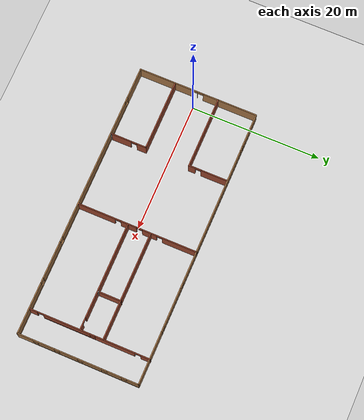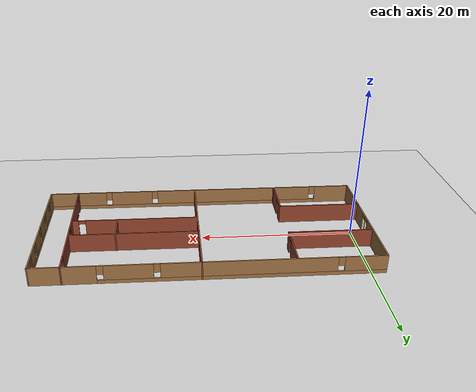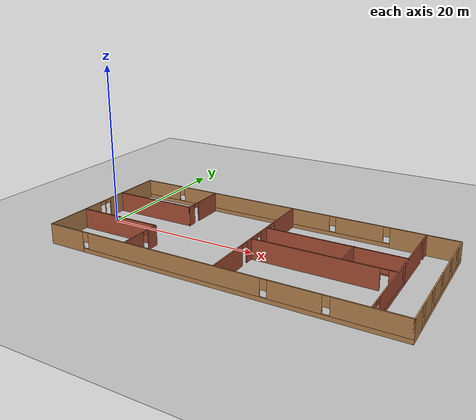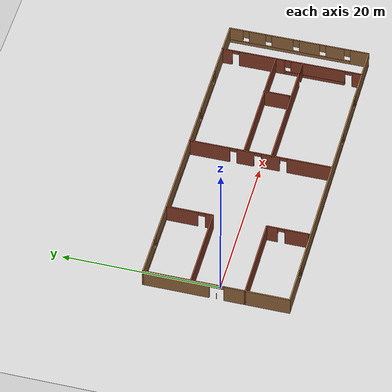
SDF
<sdf version="1.7">
 <world name="default">
  <model name="ground_plane">
   <static>1</static>
   <link name="link">
    <collision name="collision">
     <geometry><plane><normal>0 0 1</normal><size>100 100</size></plane></geometry>
     <surface>
      <contact><collide_bitmask>65535</collide_bitmask></contact>
      <friction><ode><mu>100</mu><mu2>50</mu2></ode></friction>
     </surface>
    </collision>
    <visual name="visual">
     <cast_shadows>0</cast_shadows>
     <geometry><plane><normal>0 0 1</normal><size>100 100</size></plane></geometry>
     <material>
      <script><uri>file://media/materials/scripts/gazebo.material</uri><name>Gazebo/Grey</name></script>
     </material>
    </visual>
   </link>
  </model>
  <model name="bighouse">
   <pose>19.6392 0.100979 0 0 -0 0</pose>
   <link name="Wall_16">
    <collision name="Wall_16_Collision">
     <geometry><box><size>11 0.15 2.5</size></box></geometry>
     <pose>0 0 1.25 0 -0 0</pose>
    </collision>
    <visual name="Wall_16_Visual">
     <pose>0 0 1.25 0 -0 0</pose>
     <geometry><box><size>11 0.15 2.5</size></box></geometry>
     <material>
      <script><uri>file://media/materials/scripts/gazebo.material</uri><name>Gazebo/Bricks</name></script>
      <ambient>1 1 1 1</ambient>
     </material>
     <meta><layer>0</layer></meta>
    </visual>
    <pose>-15.9308 3.16083 0 0 -0 0</pose>
   </link>
   <link name="Wall_19">
    <pose>-10.5058 6.08583 0 0 -0 1.5708</pose>
    <visual name="Wall_19_Visual_0">
     <pose>-2.46102 0 1.25 0 -0 0</pose>
     <geometry><box><size>1.07796 0.15 2.5</size></box></geometry>
     <material>
      <script><uri>file://media/materials/scripts/gazebo.material</uri><name>Gazebo/Bricks</name></script>
      <ambient>1 1 1 1</ambient>
     </material>
     <meta><layer>0</layer></meta>
    </visual>
    <collision name="Wall_19_Collision_0">
     <geometry><box><size>1.07796 0.15 2.5</size></box></geometry>
     <pose>-2.46102 0 1.25 0 -0 0</pose>
    </collision>
    <visual name="Wall_19_Visual_1">
     <pose>0.988979 0 1.25 0 -0 0</pose>
     <geometry><box><size>4.02204 0.15 2.5</size></box></geometry>
     <material>
      <script><uri>file://media/materials/scripts/gazebo.material</uri><name>Gazebo/Bricks</name></script>
      <ambient>1 1 1 1</ambient>
     </material>
     <meta><layer>0</layer></meta>
    </visual>
    <collision name="Wall_19_Collision_1">
     <geometry><box><size>4.02204 0.15 2.5</size></box></geometry>
     <pose>0.988979 0 1.25 0 -0 0</pose>
    </collision>
    <visual name="Wall_19_Visual_2">
     <pose>-1.47204 0 2.25 0 -0 0</pose>
     <geometry><box><size>0.9 0.15 0.5</size></box></geometry>
     <material>
      <script><uri>file://media/materials/scripts/gazebo.material</uri><name>Gazebo/Bricks</name></script>
      <ambient>1 1 1 1</ambient>
     </material>
     <meta><layer>0</layer></meta>
    </visual>
    <collision name="Wall_19_Collision_2">
     <geometry><box><size>0.9 0.15 0.5</size></box></geometry>
     <pose>-1.47204 0 2.25 0 -0 0</pose>
    </collision>
   </link>
   <link name="Wall_21">
    <collision name="Wall_21_Collision">
     <geometry><box><size>11 0.15 2.5</size></box></geometry>
     <pose>0 0 1.25 0 -0 0</pose>
    </collision>
    <visual name="Wall_21_Visual">
     <pose>0 0 1.25 0 -0 0</pose>
     <geometry><box><size>11 0.15 2.5</size></box></geometry>
     <material>
      <script><uri>file://media/materials/scripts/gazebo.material</uri><name>Gazebo/Bricks</name></script>
      <ambient>1 1 1 1</ambient>
     </material>
     <meta><layer>0</layer></meta>
    </visual>
    <pose>-16.0035 -3.64568 0 0 -0 0</pose>
   </link>
   <link name="Wall_22">
    <pose>-10.5785 -6.32069 0 0 -0 -1.5708</pose>
    <visual name="Wall_22_Visual_0">
     <pose>-2.0015 0 1.25 0 -0 0</pose>
     <geometry><box><size>1.49701 0.15 2.5</size></box></geometry>
     <material>
      <script><uri>file://media/materials/scripts/gazebo.material</uri><name>Gazebo/Bricks</name></script>
      <ambient>1 1 1 1</ambient>
     </material>
     <meta><layer>0</layer></meta>
    </visual>
    <collision name="Wall_22_Collision_0">
     <geometry><box><size>1.49701 0.15 2.5</size></box></geometry>
     <pose>-2.0015 0 1.25 0 -0 0</pose>
    </collision>
    <visual name="Wall_22_Visual_1">
     <pose>1.1985 0 1.25 0 -0 0</pose>
     <geometry><box><size>3.10299 0.15 2.5</size></box></geometry>
     <material>
      <script><uri>file://media/materials/scripts/gazebo.material</uri><name>Gazebo/Bricks</name></script>
      <ambient>1 1 1 1</ambient>
     </material>
     <meta><layer>0</layer></meta>
    </visual>
    <collision name="Wall_22_Collision_1">
     <geometry><box><size>3.10299 0.15 2.5</size></box></geometry>
     <pose>1.1985 0 1.25 0 -0 0</pose>
    </collision>
    <visual name="Wall_22_Visual_2">
     <pose>-0.802991 0 2.25 0 -0 0</pose>
     <geometry><box><size>0.9 0.15 0.5</size></box></geometry>
     <material>
      <script><uri>file://media/materials/scripts/gazebo.material</uri><name>Gazebo/Bricks</name></script>
      <ambient>1 1 1 1</ambient>
     </material>
     <meta><layer>0</layer></meta>
    </visual>
    <collision name="Wall_22_Collision_2">
     <geometry><box><size>0.9 0.15 0.5</size></box></geometry>
     <pose>-0.802991 0 2.25 0 -0 0</pose>
    </collision>
   </link>
   <link name="Wall_24">
    <collision name="Wall_24_Collision">
     <geometry><box><size>0.25 0.15 2.5</size></box></geometry>
     <pose>0 0 1.25 0 -0 0</pose>
    </collision>
    <visual name="Wall_24_Visual">
     <pose>0 0 1.25 0 -0 0</pose>
     <geometry><box><size>0.25 0.15 2.5</size></box></geometry>
     <material>
      <script><uri>file://media/materials/scripts/gazebo.material</uri><name>Gazebo/Grey</name></script>
      <ambient>1 1 1 1</ambient>
     </material>
     <meta><layer>0</layer></meta>
    </visual>
    <pose>-10.5655 -9.04398 0 0 -0 -1.309</pose>
   </link>
   <link name="Wall_28">
    <pose>0.951607 -0.015395 0 0 -0 -1.5708</pose>
    <visual name="Wall_28_Visual_0">
     <pose>-6.59547 0 1.25 0 -0 0</pose>
     <geometry><box><size>5.30905 0.15 2.5</size></box></geometry>
     <material>
      <script><uri>file://media/materials/scripts/gazebo.material</uri><name>Gazebo/Bricks</name></script>
      <ambient>1 1 1 1</ambient>
     </material>
     <meta><layer>0</layer></meta>
    </visual>
    <collision name="Wall_28_Collision_0">
     <geometry><box><size>5.30905 0.15 2.5</size></box></geometry>
     <pose>-6.59547 0 1.25 0 -0 0</pose>
    </collision>
    <visual name="Wall_28_Visual_1">
     <pose>-1.93341 0 1.25 0 -0 0</pose>
     <geometry><box><size>2.21508 0.15 2.5</size></box></geometry>
     <material>
      <script><uri>file://media/materials/scripts/gazebo.material</uri><name>Gazebo/Bricks</name></script>
      <ambient>1 1 1 1</ambient>
     </material>
     <meta><layer>0</layer></meta>
    </visual>
    <collision name="Wall_28_Collision_1">
     <geometry><box><size>2.21508 0.15 2.5</size></box></geometry>
     <pose>-1.93341 0 1.25 0 -0 0</pose>
    </collision>
    <visual name="Wall_28_Visual_2">
     <pose>1.28281 0 1.25 0 -0 0</pose>
     <geometry><box><size>2.41736 0.15 2.5</size></box></geometry>
     <material>
      <script><uri>file://media/materials/scripts/gazebo.material</uri><name>Gazebo/Bricks</name></script>
      <ambient>1 1 1 1</ambient>
     </material>
     <meta><layer>0</layer></meta>
    </visual>
    <collision name="Wall_28_Collision_2">
     <geometry><box><size>2.41736 0.15 2.5</size></box></geometry>
     <pose>1.28281 0 1.25 0 -0 0</pose>
    </collision>
    <visual name="Wall_28_Visual_3">
     <pose>6.32075 0 1.25 0 -0 0</pose>
     <geometry><box><size>5.85851 0.15 2.5</size></box></geometry>
     <material>
      <script><uri>file://media/materials/scripts/gazebo.material</uri><name>Gazebo/Bricks</name></script>
      <ambient>1 1 1 1</ambient>
     </material>
     <meta><layer>0</layer></meta>
    </visual>
    <collision name="Wall_28_Collision_3">
     <geometry><box><size>5.85851 0.15 2.5</size></box></geometry>
     <pose>6.32075 0 1.25 0 -0 0</pose>
    </collision>
    <visual name="Wall_28_Visual_4">
     <pose>-3.49095 0 2.25 0 -0 0</pose>
     <geometry><box><size>0.9 0.15 0.5</size></box></geometry>
     <material>
      <script><uri>file://media/materials/scripts/gazebo.material</uri><name>Gazebo/Bricks</name></script>
      <ambient>1 1 1 1</ambient>
     </material>
     <meta><layer>0</layer></meta>
    </visual>
    <collision name="Wall_28_Collision_4">
     <geometry><box><size>0.9 0.15 0.5</size></box></geometry>
     <pose>-3.49095 0 2.25 0 -0 0</pose>
    </collision>
    <visual name="Wall_28_Visual_5">
     <pose>-0.375866 0 2.25 0 -0 0</pose>
     <geometry><box><size>0.9 0.15 0.5</size></box></geometry>
     <material>
      <script><uri>file://media/materials/scripts/gazebo.material</uri><name>Gazebo/Bricks</name></script>
      <ambient>1 1 1 1</ambient>
     </material>
     <meta><layer>0</layer></meta>
    </visual>
    <collision name="Wall_28_Collision_5">
     <geometry><box><size>0.9 0.15 0.5</size></box></geometry>
     <pose>-0.375866 0 2.25 0 -0 0</pose>
    </collision>
    <visual name="Wall_28_Visual_6">
     <pose>2.94149 0 2.25 0 -0 0</pose>
     <geometry><box><size>0.9 0.15 0.5</size></box></geometry>
     <material>
      <script><uri>file://media/materials/scripts/gazebo.material</uri><name>Gazebo/Bricks</name></script>
      <ambient>1 1 1 1</ambient>
     </material>
     <meta><layer>0</layer></meta>
    </visual>
    <collision name="Wall_28_Collision_6">
     <geometry><box><size>0.9 0.15 0.5</size></box></geometry>
     <pose>2.94149 0 2.25 0 -0 0</pose>
    </collision>
   </link>
   <link name="Wall_30">
    <pose>17.5788 0.025061 0 0 -0 -1.5708</pose>
    <visual name="Wall_30_Visual_0">
     <pose>-8.51711 0 1.25 0 -0 0</pose>
     <geometry><box><size>1.46578 0.15 2.5</size></box></geometry>
     <material>
      <script><uri>file://media/materials/scripts/gazebo.material</uri><name>Gazebo/Bricks</name></script>
      <ambient>1 1 1 1</ambient>
     </material>
     <meta><layer>0</layer></meta>
    </visual>
    <collision name="Wall_30_Collision_0">
     <geometry><box><size>1.46578 0.15 2.5</size></box></geometry>
     <pose>-8.51711 0 1.25 0 -0 0</pose>
    </collision>
    <visual name="Wall_30_Visual_1">
     <pose>-3.8705 0 1.25 0 -0 0</pose>
     <geometry><box><size>6.02745 0.15 2.5</size></box></geometry>
     <material>
      <script><uri>file://media/materials/scripts/gazebo.material</uri><name>Gazebo/Bricks</name></script>
      <ambient>1 1 1 1</ambient>
     </material>
     <meta><layer>0</layer></meta>
    </visual>
    <collision name="Wall_30_Collision_1">
     <geometry><box><size>6.02745 0.15 2.5</size></box></geometry>
     <pose>-3.8705 0 1.25 0 -0 0</pose>
    </collision>
    <visual name="Wall_30_Visual_2">
     <pose>8.60649 0 1.25 0 -0 0</pose>
     <geometry><box><size>1.28703 0.15 2.5</size></box></geometry>
     <material>
      <script><uri>file://media/materials/scripts/gazebo.material</uri><name>Gazebo/Bricks</name></script>
      <ambient>1 1 1 1</ambient>
     </material>
     <meta><layer>0</layer></meta>
    </visual>
    <collision name="Wall_30_Collision_2">
     <geometry><box><size>1.28703 0.15 2.5</size></box></geometry>
     <pose>8.60649 0 1.25 0 -0 0</pose>
    </collision>
    <visual name="Wall_30_Visual_3">
     <pose>3.1031 0 0.25 0 -0 0</pose>
     <geometry><box><size>7.91975 0.15 0.5</size></box></geometry>
     <material>
      <script><uri>file://media/materials/scripts/gazebo.material</uri><name>Gazebo/Bricks</name></script>
      <ambient>1 1 1 1</ambient>
     </material>
     <meta><layer>0</layer></meta>
    </visual>
    <collision name="Wall_30_Collision_3">
     <geometry><box><size>7.91975 0.15 0.5</size></box></geometry>
     <pose>3.1031 0 0.25 0 -0 0</pose>
    </collision>
    <visual name="Wall_30_Visual_4">
     <pose>3.5031 0 1.5 0 -0 0</pose>
     <geometry><box><size>7.11975 0.15 2</size></box></geometry>
     <material>
      <script><uri>file://media/materials/scripts/gazebo.material</uri><name>Gazebo/Bricks</name></script>
      <ambient>1 1 1 1</ambient>
     </material>
     <meta><layer>0</layer></meta>
    </visual>
    <collision name="Wall_30_Collision_4">
     <geometry><box><size>7.11975 0.15 2</size></box></geometry>
     <pose>3.5031 0 1.5 0 -0 0</pose>
    </collision>
    <visual name="Wall_30_Visual_5">
     <pose>-0.456777 0 1.9 0 -0 0</pose>
     <geometry><box><size>0.8 0.15 1.2</size></box></geometry>
     <material>
      <script><uri>file://media/materials/scripts/gazebo.material</uri><name>Gazebo/Bricks</name></script>
      <ambient>1 1 1 1</ambient>
     </material>
     <meta><layer>0</layer></meta>
    </visual>
    <collision name="Wall_30_Collision_5">
     <geometry><box><size>0.8 0.15 1.2</size></box></geometry>
     <pose>-0.456777 0 1.9 0 -0 0</pose>
    </collision>
    <visual name="Wall_30_Visual_6">
     <pose>-7.33422 0 2.25 0 -0 0</pose>
     <geometry><box><size>0.9 0.15 0.5</size></box></geometry>
     <material>
      <script><uri>file://media/materials/scripts/gazebo.material</uri><name>Gazebo/Bricks</name></script>
      <ambient>1 1 1 1</ambient>
     </material>
     <meta><layer>0</layer></meta>
    </visual>
    <collision name="Wall_30_Collision_6">
     <geometry><box><size>0.9 0.15 0.5</size></box></geometry>
     <pose>-7.33422 0 2.25 0 -0 0</pose>
    </collision>
    <visual name="Wall_30_Visual_7">
     <pose>7.51297 0 2.25 0 -0 0</pose>
     <geometry><box><size>0.9 0.15 0.5</size></box></geometry>
     <material>
      <script><uri>file://media/materials/scripts/gazebo.material</uri><name>Gazebo/Bricks</name></script>
      <ambient>1 1 1 1</ambient>
     </material>
     <meta><layer>0</layer></meta>
    </visual>
    <collision name="Wall_30_Collision_7">
     <geometry><box><size>0.9 0.15 0.5</size></box></geometry>
     <pose>7.51297 0 2.25 0 -0 0</pose>
    </collision>
   </link>
   <link name="Wall_34">
    <collision name="Wall_34_Collision">
     <geometry><box><size>16.75 0.15 2.5</size></box></geometry>
     <pose>0 0 1.25 0 -0 0</pose>
    </collision>
    <visual name="Wall_34_Visual">
     <pose>0 0 1.25 0 -0 0</pose>
     <geometry><box><size>16.75 0.15 2.5</size></box></geometry>
     <material>
      <script><uri>file://media/materials/scripts/gazebo.material</uri><name>Gazebo/Bricks</name></script>
      <ambient>1 1 1 1</ambient>
     </material>
     <meta><layer>0</layer></meta>
    </visual>
    <pose>9.25161 2.12033 0 0 -0 0</pose>
   </link>
   <link name="Wall_36">
    <pose>9.25161 -1.3993 0 0 -0 0</pose>
    <visual name="Wall_36_Visual_0">
     <pose>-0.938142 0 1.25 0 -0 0</pose>
     <geometry><box><size>14.8737 0.15 2.5</size></box></geometry>
     <material>
      <script><uri>file://media/materials/scripts/gazebo.material</uri><name>Gazebo/Bricks</name></script>
      <ambient>1 1 1 1</ambient>
     </material>
     <meta><layer>0</layer></meta>
    </visual>
    <collision name="Wall_36_Collision_0">
     <geometry><box><size>14.8737 0.15 2.5</size></box></geometry>
     <pose>-0.938142 0 1.25 0 -0 0</pose>
    </collision>
    <visual name="Wall_36_Visual_1">
     <pose>7.88686 0 1.25 0 -0 0</pose>
     <geometry><box><size>0.976284 0.15 2.5</size></box></geometry>
     <material>
      <script><uri>file://media/materials/scripts/gazebo.material</uri><name>Gazebo/Bricks</name></script>
      <ambient>1 1 1 1</ambient>
     </material>
     <meta><layer>0</layer></meta>
    </visual>
    <collision name="Wall_36_Collision_1">
     <geometry><box><size>0.976284 0.15 2.5</size></box></geometry>
     <pose>7.88686 0 1.25 0 -0 0</pose>
    </collision>
    <visual name="Wall_36_Visual_2">
     <pose>6.94872 0 2.25 0 -0 0</pose>
     <geometry><box><size>0.9 0.15 0.5</size></box></geometry>
     <material>
      <script><uri>file://media/materials/scripts/gazebo.material</uri><name>Gazebo/Bricks</name></script>
      <ambient>1 1 1 1</ambient>
     </material>
     <meta><layer>0</layer></meta>
    </visual>
    <collision name="Wall_36_Collision_2">
     <geometry><box><size>0.9 0.15 0.5</size></box></geometry>
     <pose>6.94872 0 2.25 0 -0 0</pose>
    </collision>
   </link>
   <link name="Wall_40">
    <collision name="Wall_40_Collision">
     <geometry><box><size>3.5 0.15 2.5</size></box></geometry>
     <pose>0 0 1.25 0 -0 0</pose>
    </collision>
    <visual name="Wall_40_Visual">
     <pose>0 0 1.25 0 -0 0</pose>
     <geometry><box><size>3.5 0.15 2.5</size></box></geometry>
     <material>
      <script><uri>file://media/materials/scripts/gazebo.material</uri><name>Gazebo/Bricks</name></script>
      <ambient>1 1 1 1</ambient>
     </material>
     <meta><layer>0</layer></meta>
    </visual>
    <pose>11.5914 0.48579 0 0 -0 -1.5708</pose>
   </link>
   <link name="Wall_41">
    <collision name="Wall_41_Collision">
     <geometry><box><size>0.25 0.15 2.5</size></box></geometry>
     <pose>0 0 1.25 0 -0 0</pose>
    </collision>
    <visual name="Wall_41_Visual">
     <pose>0 0 1.25 0 -0 0</pose>
     <geometry><box><size>0.25 0.15 2.5</size></box></geometry>
     <material>
      <script><uri>file://media/materials/scripts/gazebo.material</uri><name>Gazebo/Grey</name></script>
      <ambient>1 1 1 1</ambient>
     </material>
     <meta><layer>0</layer></meta>
    </visual>
    <pose>11.6044 -1.23751 0 0 -0 -1.309</pose>
   </link>
   <link name="Wall_6">
    <pose>-21.4215 -0.025061 0 0 -0 -1.5708</pose>
    <visual name="Wall_6_Visual_0">
     <pose>-5.04277 0 1.25 0 -0 0</pose>
     <geometry><box><size>8.41447 0.15 2.5</size></box></geometry>
     <material>
      <script><uri>file://media/materials/scripts/gazebo.material</uri><name>Gazebo/Wood</name></script>
      <ambient>1 1 1 1</ambient>
     </material>
     <meta><layer>0</layer></meta>
    </visual>
    <collision name="Wall_6_Collision_0">
     <geometry><box><size>8.41447 0.15 2.5</size></box></geometry>
     <pose>-5.04277 0 1.25 0 -0 0</pose>
    </collision>
    <visual name="Wall_6_Visual_1">
     <pose>0.073447 0 1.25 0 -0 0</pose>
     <geometry><box><size>0.017959 0.15 2.5</size></box></geometry>
     <material>
      <script><uri>file://media/materials/scripts/gazebo.material</uri><name>Gazebo/Wood</name></script>
      <ambient>1 1 1 1</ambient>
     </material>
     <meta><layer>0</layer></meta>
    </visual>
    <collision name="Wall_6_Collision_1">
     <geometry><box><size>0.017959 0.15 2.5</size></box></geometry>
     <pose>0.073447 0 1.25 0 -0 0</pose>
    </collision>
    <visual name="Wall_6_Visual_2">
     <pose>5.11621 0 1.25 0 -0 0</pose>
     <geometry><box><size>8.26757 0.15 2.5</size></box></geometry>
     <material>
      <script><uri>file://media/materials/scripts/gazebo.material</uri><name>Gazebo/Wood</name></script>
      <ambient>1 1 1 1</ambient>
     </material>
     <meta><layer>0</layer></meta>
    </visual>
    <collision name="Wall_6_Collision_2">
     <geometry><box><size>8.26757 0.15 2.5</size></box></geometry>
     <pose>5.11621 0 1.25 0 -0 0</pose>
    </collision>
    <visual name="Wall_6_Visual_3">
     <pose>-0.385532 0 2.25 0 -0 0</pose>
     <geometry><box><size>0.9 0.15 0.5</size></box></geometry>
     <material>
      <script><uri>file://media/materials/scripts/gazebo.material</uri><name>Gazebo/Wood</name></script>
      <ambient>1 1 1 1</ambient>
     </material>
     <meta><layer>0</layer></meta>
    </visual>
    <collision name="Wall_6_Collision_3">
     <geometry><box><size>0.9 0.15 0.5</size></box></geometry>
     <pose>-0.385532 0 2.25 0 -0 0</pose>
    </collision>
    <visual name="Wall_6_Visual_4">
     <pose>0.532427 0 2.25 0 -0 0</pose>
     <geometry><box><size>0.9 0.15 0.5</size></box></geometry>
     <material>
      <script><uri>file://media/materials/scripts/gazebo.material</uri><name>Gazebo/Wood</name></script>
      <ambient>1 1 1 1</ambient>
     </material>
     <meta><layer>0</layer></meta>
    </visual>
    <collision name="Wall_6_Collision_4">
     <geometry><box><size>0.9 0.15 0.5</size></box></geometry>
     <pose>0.532427 0 2.25 0 -0 0</pose>
    </collision>
   </link>
   <link name="Wall_7">
    <pose>0.003474 -9.20006 0 0 -0 0</pose>
    <visual name="Wall_7_Visual_0">
     <pose>-19.054 0 1.25 0 -0 0</pose>
     <geometry><box><size>4.89193 0.15 2.5</size></box></geometry>
     <material>
      <script><uri>file://media/materials/scripts/gazebo.material</uri><name>Gazebo/Wood</name></script>
      <ambient>1 1 1 1</ambient>
     </material>
     <meta><layer>0</layer></meta>
    </visual>
    <collision name="Wall_7_Collision_0">
     <geometry><box><size>4.89193 0.15 2.5</size></box></geometry>
     <pose>-19.054 0 1.25 0 -0 0</pose>
    </collision>
    <visual name="Wall_7_Visual_1">
     <pose>2.44597 0 0.25 0 -0 0</pose>
     <geometry><box><size>38.1081 0.15 0.5</size></box></geometry>
     <material>
      <script><uri>file://media/materials/scripts/gazebo.material</uri><name>Gazebo/Wood</name></script>
      <ambient>1 1 1 1</ambient>
     </material>
     <meta><layer>0</layer></meta>
    </visual>
    <collision name="Wall_7_Collision_1">
     <geometry><box><size>38.1081 0.15 0.5</size></box></geometry>
     <pose>2.44597 0 0.25 0 -0 0</pose>
    </collision>
    <visual name="Wall_7_Visual_2">
     <pose>-4.75914 0 1.5 0 -0 0</pose>
     <geometry><box><size>22.0979 0.15 2</size></box></geometry>
     <material>
      <script><uri>file://media/materials/scripts/gazebo.material</uri><name>Gazebo/Wood</name></script>
      <ambient>1 1 1 1</ambient>
     </material>
     <meta><layer>0</layer></meta>
    </visual>
    <collision name="Wall_7_Collision_2">
     <geometry><box><size>22.0979 0.15 2</size></box></geometry>
     <pose>-4.75914 0 1.5 0 -0 0</pose>
    </collision>
    <visual name="Wall_7_Visual_3">
     <pose>9.96669 0 1.5 0 -0 0</pose>
     <geometry><box><size>5.7538 0.15 2</size></box></geometry>
     <material>
      <script><uri>file://media/materials/scripts/gazebo.material</uri><name>Gazebo/Wood</name></script>
      <ambient>1 1 1 1</ambient>
     </material>
     <meta><layer>0</layer></meta>
    </visual>
    <collision name="Wall_7_Collision_3">
     <geometry><box><size>5.7538 0.15 2</size></box></geometry>
     <pose>9.96669 0 1.5 0 -0 0</pose>
    </collision>
    <visual name="Wall_7_Visual_4">
     <pose>17.5718 0 1.5 0 -0 0</pose>
     <geometry><box><size>7.85641 0.15 2</size></box></geometry>
     <material>
      <script><uri>file://media/materials/scripts/gazebo.material</uri><name>Gazebo/Wood</name></script>
      <ambient>1 1 1 1</ambient>
     </material>
     <meta><layer>0</layer></meta>
    </visual>
    <collision name="Wall_7_Collision_4">
     <geometry><box><size>7.85641 0.15 2</size></box></geometry>
     <pose>17.5718 0 1.5 0 -0 0</pose>
    </collision>
    <visual name="Wall_7_Visual_5">
     <pose>-16.2081 0 1.9 0 -0 0</pose>
     <geometry><box><size>0.8 0.15 1.2</size></box></geometry>
     <material>
      <script><uri>file://media/materials/scripts/gazebo.material</uri><name>Gazebo/Wood</name></script>
      <ambient>1 1 1 1</ambient>
     </material>
     <meta><layer>0</layer></meta>
    </visual>
    <collision name="Wall_7_Collision_5">
     <geometry><box><size>0.8 0.15 1.2</size></box></geometry>
     <pose>-16.2081 0 1.9 0 -0 0</pose>
    </collision>
    <visual name="Wall_7_Visual_6">
     <pose>6.68979 0 1.9 0 -0 0</pose>
     <geometry><box><size>0.8 0.15 1.2</size></box></geometry>
     <material>
      <script><uri>file://media/materials/scripts/gazebo.material</uri><name>Gazebo/Wood</name></script>
      <ambient>1 1 1 1</ambient>
     </material>
     <meta><layer>0</layer></meta>
    </visual>
    <collision name="Wall_7_Collision_6">
     <geometry><box><size>0.8 0.15 1.2</size></box></geometry>
     <pose>6.68979 0 1.9 0 -0 0</pose>
    </collision>
    <visual name="Wall_7_Visual_7">
     <pose>13.2436 0 1.9 0 -0 0</pose>
     <geometry><box><size>0.8 0.15 1.2</size></box></geometry>
     <material>
      <script><uri>file://media/materials/scripts/gazebo.material</uri><name>Gazebo/Wood</name></script>
      <ambient>1 1 1 1</ambient>
     </material>
     <meta><layer>0</layer></meta>
    </visual>
    <collision name="Wall_7_Collision_7">
     <geometry><box><size>0.8 0.15 1.2</size></box></geometry>
     <pose>13.2436 0 1.9 0 -0 0</pose>
    </collision>
   </link>
   <link name="Wall_8">
    <pose>21.4285 -0.025061 0 0 -0 1.5708</pose>
    <visual name="Wall_8_Visual_0">
     <pose>-8.0305 0 1.25 0 -0 0</pose>
     <geometry><box><size>2.43899 0.15 2.5</size></box></geometry>
     <material>
      <script><uri>file://media/materials/scripts/gazebo.material</uri><name>Gazebo/Wood</name></script>
      <ambient>1 1 1 1</ambient>
     </material>
     <meta><layer>0</layer></meta>
    </visual>
    <collision name="Wall_8_Collision_0">
     <geometry><box><size>2.43899 0.15 2.5</size></box></geometry>
     <pose>-8.0305 0 1.25 0 -0 0</pose>
    </collision>
    <visual name="Wall_8_Visual_1">
     <pose>1.2195 0 0.25 0 -0 0</pose>
     <geometry><box><size>16.061 0.15 0.5</size></box></geometry>
     <material>
      <script><uri>file://media/materials/scripts/gazebo.material</uri><name>Gazebo/Wood</name></script>
      <ambient>1 1 1 1</ambient>
     </material>
     <meta><layer>0</layer></meta>
    </visual>
    <collision name="Wall_8_Collision_1">
     <geometry><box><size>16.061 0.15 0.5</size></box></geometry>
     <pose>1.2195 0 0.25 0 -0 0</pose>
    </collision>
    <visual name="Wall_8_Visual_2">
     <pose>-4.79278 0 1.5 0 -0 0</pose>
     <geometry><box><size>2.43645 0.15 2</size></box></geometry>
     <material>
      <script><uri>file://media/materials/scripts/gazebo.material</uri><name>Gazebo/Wood</name></script>
      <ambient>1 1 1 1</ambient>
     </material>
     <meta><layer>0</layer></meta>
    </visual>
    <collision name="Wall_8_Collision_2">
     <geometry><box><size>2.43645 0.15 2</size></box></geometry>
     <pose>-4.79278 0 1.5 0 -0 0</pose>
    </collision>
    <visual name="Wall_8_Visual_3">
     <pose>-1.41474 0 1.5 0 -0 0</pose>
     <geometry><box><size>2.71963 0.15 2</size></box></geometry>
     <material>
      <script><uri>file://media/materials/scripts/gazebo.material</uri><name>Gazebo/Wood</name></script>
      <ambient>1 1 1 1</ambient>
     </material>
     <meta><layer>0</layer></meta>
    </visual>
    <collision name="Wall_8_Collision_3">
     <geometry><box><size>2.71963 0.15 2</size></box></geometry>
     <pose>-1.41474 0 1.5 0 -0 0</pose>
    </collision>
    <visual name="Wall_8_Visual_4">
     <pose>2.16558 0 1.5 0 -0 0</pose>
     <geometry><box><size>2.841 0.15 2</size></box></geometry>
     <material>
      <script><uri>file://media/materials/scripts/gazebo.material</uri><name>Gazebo/Wood</name></script>
      <ambient>1 1 1 1</ambient>
     </material>
     <meta><layer>0</layer></meta>
    </visual>
    <collision name="Wall_8_Collision_4">
     <geometry><box><size>2.841 0.15 2</size></box></geometry>
     <pose>2.16558 0 1.5 0 -0 0</pose>
    </collision>
    <visual name="Wall_8_Visual_5">
     <pose>5.48294 0 1.5 0 -0 0</pose>
     <geometry><box><size>2.19371 0.15 2</size></box></geometry>
     <material>
      <script><uri>file://media/materials/scripts/gazebo.material</uri><name>Gazebo/Wood</name></script>
      <ambient>1 1 1 1</ambient>
     </material>
     <meta><layer>0</layer></meta>
    </visual>
    <collision name="Wall_8_Collision_5">
     <geometry><box><size>2.19371 0.15 2</size></box></geometry>
     <pose>5.48294 0 1.5 0 -0 0</pose>
    </collision>
    <visual name="Wall_8_Visual_6">
     <pose>8.3149 0 1.5 0 -0 0</pose>
     <geometry><box><size>1.87021 0.15 2</size></box></geometry>
     <material>
      <script><uri>file://media/materials/scripts/gazebo.material</uri><name>Gazebo/Wood</name></script>
      <ambient>1 1 1 1</ambient>
     </material>
     <meta><layer>0</layer></meta>
    </visual>
    <collision name="Wall_8_Collision_6">
     <geometry><box><size>1.87021 0.15 2</size></box></geometry>
     <pose>8.3149 0 1.5 0 -0 0</pose>
    </collision>
    <visual name="Wall_8_Visual_7">
     <pose>-6.41101 0 1.9 0 -0 0</pose>
     <geometry><box><size>0.8 0.15 1.2</size></box></geometry>
     <material>
      <script><uri>file://media/materials/scripts/gazebo.material</uri><name>Gazebo/Wood</name></script>
      <ambient>1 1 1 1</ambient>
     </material>
     <meta><layer>0</layer></meta>
    </visual>
    <collision name="Wall_8_Collision_7">
     <geometry><box><size>0.8 0.15 1.2</size></box></geometry>
     <pose>-6.41101 0 1.9 0 -0 0</pose>
    </collision>
    <visual name="Wall_8_Visual_8">
     <pose>-3.17456 0 1.9 0 -0 0</pose>
     <geometry><box><size>0.8 0.15 1.2</size></box></geometry>
     <material>
      <script><uri>file://media/materials/scripts/gazebo.material</uri><name>Gazebo/Wood</name></script>
      <ambient>1 1 1 1</ambient>
     </material>
     <meta><layer>0</layer></meta>
    </visual>
    <collision name="Wall_8_Collision_8">
     <geometry><box><size>0.8 0.15 1.2</size></box></geometry>
     <pose>-3.17456 0 1.9 0 -0 0</pose>
    </collision>
    <visual name="Wall_8_Visual_9">
     <pose>0.345077 0 1.9 0 -0 0</pose>
     <geometry><box><size>0.8 0.15 1.2</size></box></geometry>
     <material>
      <script><uri>file://media/materials/scripts/gazebo.material</uri><name>Gazebo/Wood</name></script>
      <ambient>1 1 1 1</ambient>
     </material>
     <meta><layer>0</layer></meta>
    </visual>
    <collision name="Wall_8_Collision_9">
     <geometry><box><size>0.8 0.15 1.2</size></box></geometry>
     <pose>0.345077 0 1.9 0 -0 0</pose>
    </collision>
    <visual name="Wall_8_Visual_10">
     <pose>3.98608 0 1.9 0 -0 0</pose>
     <geometry><box><size>0.8 0.15 1.2</size></box></geometry>
     <material>
      <script><uri>file://media/materials/scripts/gazebo.material</uri><name>Gazebo/Wood</name></script>
      <ambient>1 1 1 1</ambient>
     </material>
     <meta><layer>0</layer></meta>
    </visual>
    <collision name="Wall_8_Collision_10">
     <geometry><box><size>0.8 0.15 1.2</size></box></geometry>
     <pose>3.98608 0 1.9 0 -0 0</pose>
    </collision>
    <visual name="Wall_8_Visual_11">
     <pose>6.97979 0 1.9 0 -0 0</pose>
     <geometry><box><size>0.8 0.15 1.2</size></box></geometry>
     <material>
      <script><uri>file://media/materials/scripts/gazebo.material</uri><name>Gazebo/Wood</name></script>
      <ambient>1 1 1 1</ambient>
     </material>
     <meta><layer>0</layer></meta>
    </visual>
    <collision name="Wall_8_Collision_11">
     <geometry><box><size>0.8 0.15 1.2</size></box></geometry>
     <pose>6.97979 0 1.9 0 -0 0</pose>
    </collision>
   </link>
   <link name="Wall_9">
    <pose>0.003474 9.14994 0 0 -0 3.14159</pose>
    <visual name="Wall_9_Visual_0">
     <pose>-17.4504 0 1.25 0 -0 0</pose>
     <geometry><box><size>8.09914 0.15 2.5</size></box></geometry>
     <material>
      <script><uri>file://media/materials/scripts/gazebo.material</uri><name>Gazebo/Wood</name></script>
      <ambient>1 1 1 1</ambient>
     </material>
     <meta><layer>0</layer></meta>
    </visual>
    <collision name="Wall_9_Collision_0">
     <geometry><box><size>8.09914 0.15 2.5</size></box></geometry>
     <pose>-17.4504 0 1.25 0 -0 0</pose>
    </collision>
    <visual name="Wall_9_Visual_1">
     <pose>4.04957 0 0.25 0 -0 0</pose>
     <geometry><box><size>34.9009 0.15 0.5</size></box></geometry>
     <material>
      <script><uri>file://media/materials/scripts/gazebo.material</uri><name>Gazebo/Wood</name></script>
      <ambient>1 1 1 1</ambient>
     </material>
     <meta><layer>0</layer></meta>
    </visual>
    <collision name="Wall_9_Collision_1">
     <geometry><box><size>34.9009 0.15 0.5</size></box></geometry>
     <pose>4.04957 0 0.25 0 -0 0</pose>
    </collision>
    <visual name="Wall_9_Visual_2">
     <pose>-9.64305 0 1.5 0 -0 0</pose>
     <geometry><box><size>5.91563 0.15 2</size></box></geometry>
     <material>
      <script><uri>file://media/materials/scripts/gazebo.material</uri><name>Gazebo/Wood</name></script>
      <ambient>1 1 1 1</ambient>
     </material>
     <meta><layer>0</layer></meta>
    </visual>
    <collision name="Wall_9_Collision_2">
     <geometry><box><size>5.91563 0.15 2</size></box></geometry>
     <pose>-9.64305 0 1.5 0 -0 0</pose>
    </collision>
    <visual name="Wall_9_Visual_3">
     <pose>4.77937 0 1.5 0 -0 0</pose>
     <geometry><box><size>21.3292 0.15 2</size></box></geometry>
     <material>
      <script><uri>file://media/materials/scripts/gazebo.material</uri><name>Gazebo/Wood</name></script>
      <ambient>1 1 1 1</ambient>
     </material>
     <meta><layer>0</layer></meta>
    </visual>
    <collision name="Wall_9_Collision_3">
     <geometry><box><size>21.3292 0.15 2</size></box></geometry>
     <pose>4.77937 0 1.5 0 -0 0</pose>
    </collision>
    <visual name="Wall_9_Visual_4">
     <pose>18.872 0 1.5 0 -0 0</pose>
     <geometry><box><size>5.25603 0.15 2</size></box></geometry>
     <material>
      <script><uri>file://media/materials/scripts/gazebo.material</uri><name>Gazebo/Wood</name></script>
      <ambient>1 1 1 1</ambient>
     </material>
     <meta><layer>0</layer></meta>
    </visual>
    <collision name="Wall_9_Collision_4">
     <geometry><box><size>5.25603 0.15 2</size></box></geometry>
     <pose>18.872 0 1.5 0 -0 0</pose>
    </collision>
    <visual name="Wall_9_Visual_5">
     <pose>-13.0009 0 1.9 0 -0 0</pose>
     <geometry><box><size>0.8 0.15 1.2</size></box></geometry>
     <material>
      <script><uri>file://media/materials/scripts/gazebo.material</uri><name>Gazebo/Wood</name></script>
      <ambient>1 1 1 1</ambient>
     </material>
     <meta><layer>0</layer></meta>
    </visual>
    <collision name="Wall_9_Collision_5">
     <geometry><box><size>0.8 0.15 1.2</size></box></geometry>
     <pose>-13.0009 0 1.9 0 -0 0</pose>
    </collision>
    <visual name="Wall_9_Visual_6">
     <pose>-6.28523 0 1.9 0 -0 0</pose>
     <geometry><box><size>0.8 0.15 1.2</size></box></geometry>
     <material>
      <script><uri>file://media/materials/scripts/gazebo.material</uri><name>Gazebo/Wood</name></script>
      <ambient>1 1 1 1</ambient>
     </material>
     <meta><layer>0</layer></meta>
    </visual>
    <collision name="Wall_9_Collision_6">
     <geometry><box><size>0.8 0.15 1.2</size></box></geometry>
     <pose>-6.28523 0 1.9 0 -0 0</pose>
    </collision>
    <visual name="Wall_9_Visual_7">
     <pose>15.844 0 1.9 0 -0 0</pose>
     <geometry><box><size>0.8 0.15 1.2</size></box></geometry>
     <material>
      <script><uri>file://media/materials/scripts/gazebo.material</uri><name>Gazebo/Wood</name></script>
      <ambient>1 1 1 1</ambient>
     </material>
     <meta><layer>0</layer></meta>
    </visual>
    <collision name="Wall_9_Collision_7">
     <geometry><box><size>0.8 0.15 1.2</size></box></geometry>
     <pose>15.844 0 1.9 0 -0 0</pose>
    </collision>
   </link>
   <static>1</static>
  </model>
 </world>
</sdf>
